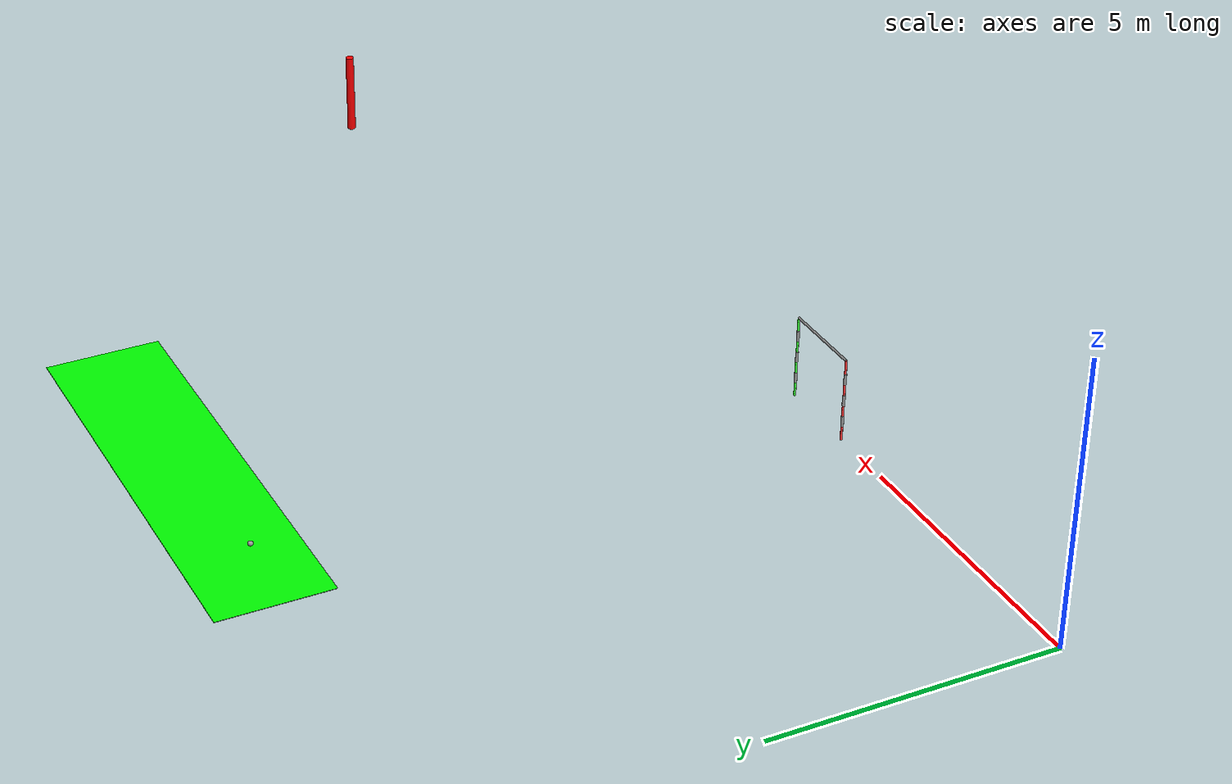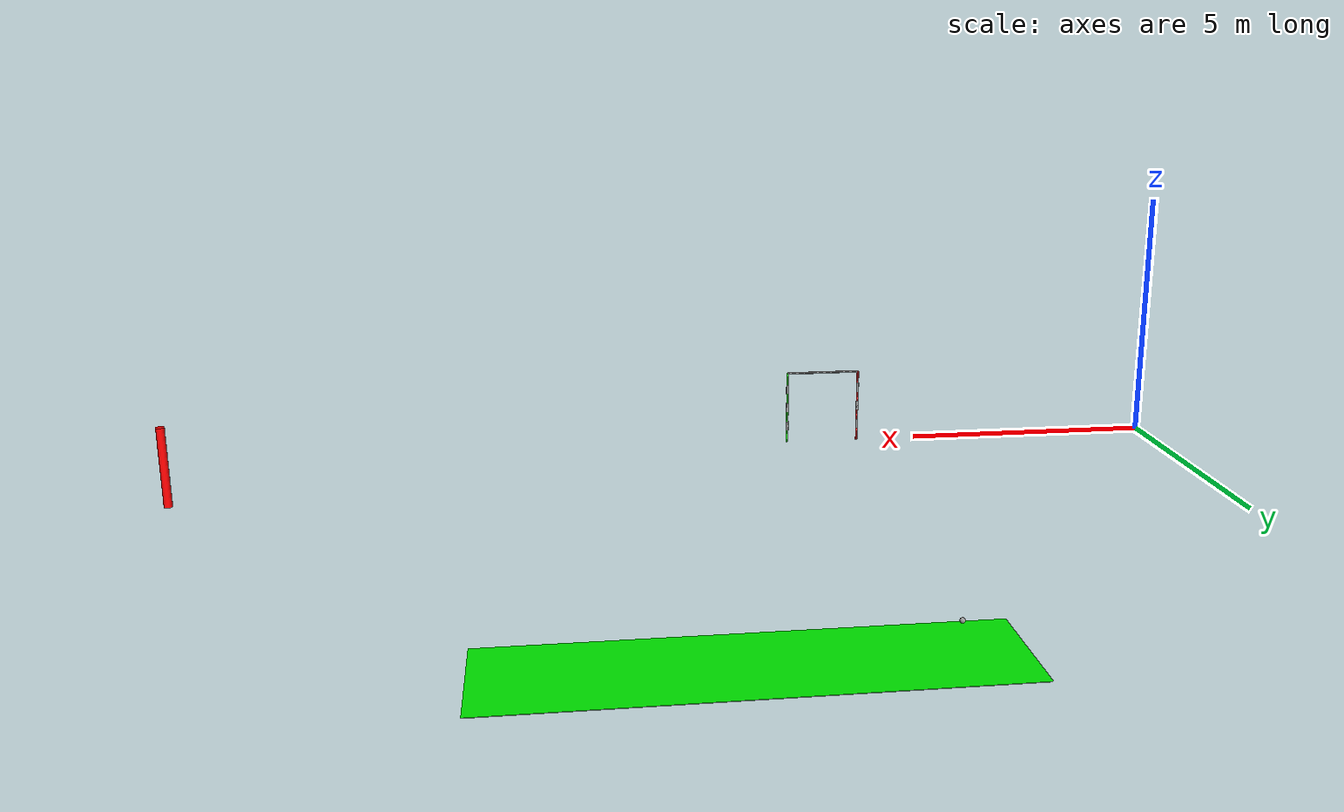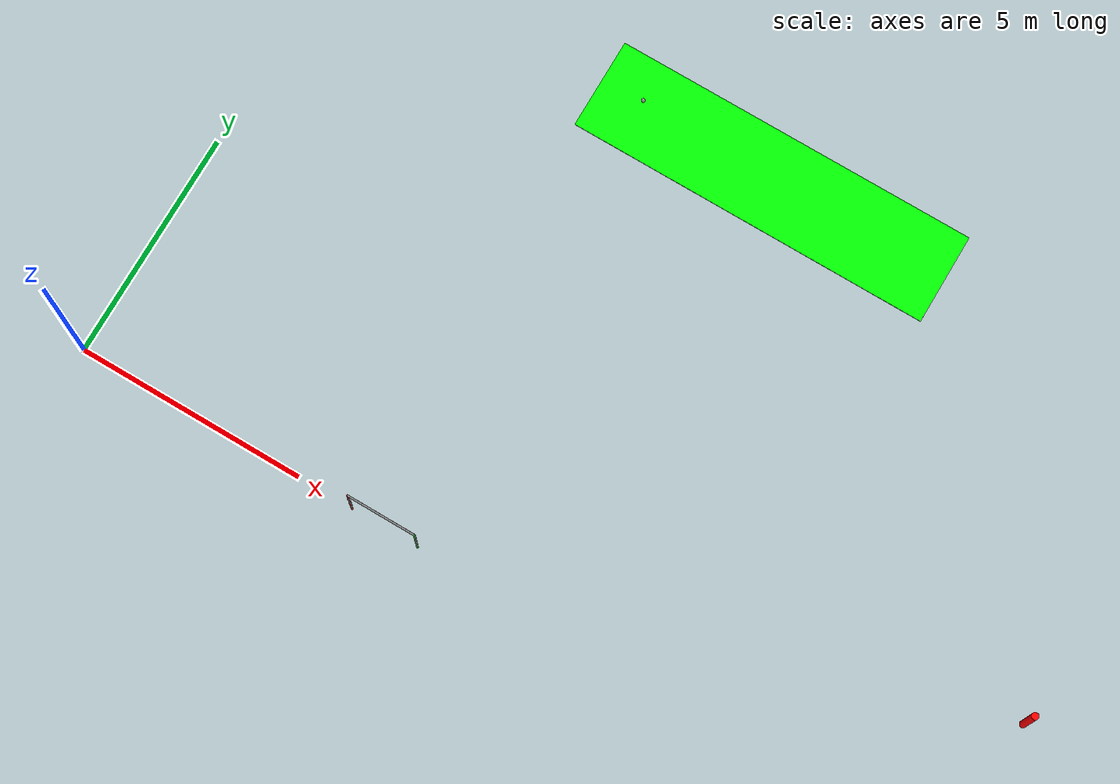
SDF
<sdf version="1.7">
 <world name="default">
  <include><uri>model://sun</uri></include>
  <include><uri>model://gate</uri><pose>7 0 0 0 -0 0</pose><static>1</static></include>
  <include><uri>model://green_mat</uri><pose>10 10 0 0 -0 0</pose><static>1</static></include>
  <include><uri>model://golf_ball</uri><pose>7 10 0.2 0 -0 0</pose></include>
  <include><uri>model://red_flare</uri><pose>19.6 3 0.2 0 -0 0</pose></include>
  <plugin name="gazebo_ros_state" filename="libgazebo_ros_state.so">
   <ros><namespace>/sauvc_sim</namespace></ros>
   <update_rate>1.0</update_rate>
  </plugin>
 </world>
</sdf>

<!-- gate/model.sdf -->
<sdf version='1.7'>
  <model name='gate'>
    <link name='link_0'>
      <inertial>
        <mass>1</mass>
        <inertia>
          <ixx>0.145833</ixx>
          <ixy>0</ixy>
          <ixz>0</ixz>
          <iyy>0.145833</iyy>
          <iyz>0</iyz>
          <izz>0.125</izz>
        </inertia>
        <pose>0 0 0 0 -0 0</pose>
      </inertial>
      <pose>-0.75 0 0.75 0 -0 0</pose>
      <gravity>1</gravity>
      <self_collide>0</self_collide>
      <kinematic>0</kinematic>
      <enable_wind>0</enable_wind>
      <visual name='ModelPreview_4::link_0::visual_3'>
        <pose>0 0 -0.4 0 -0 0</pose>
        <geometry>
          <cylinder>
            <radius>0.025</radius>
            <length>0.2</length>
          </cylinder>
        </geometry>
        <material>
          <lighting>1</lighting>
          <script>
            <uri>file://media/materials/scripts/gazebo.material</uri>
            <name>Gazebo/Grey</name>
          </script>
          <shader type='pixel'>
            <normal_map>__default__</normal_map>
          </shader>
          <ambient>0.3 0.3 0.3 1</ambient>
          <diffuse>0.2 0.2 0.2 1</diffuse>
          <specular>0.01 0.01 0.01 1</specular>
          <emissive>0 0 0 1</emissive>
        </material>
        <transparency>0</transparency>
        <cast_shadows>1</cast_shadows>
      </visual>
      <visual name='ModelPreview_1::link_0::visual_1'>
        <pose>0 0 0 0 -0 0</pose>
        <geometry>
          <cylinder>
            <radius>0.025</radius>
            <length>0.2</length>
          </cylinder>
        </geometry>
        <material>
          <lighting>1</lighting>
          <script>
            <uri>file://media/materials/scripts/gazebo.material</uri>
            <name>Gazebo/Grey</name>
          </script>
          <shader type='pixel'>
            <normal_map>__default__</normal_map>
          </shader>
          <ambient>0.3 0.3 0.3 1</ambient>
          <diffuse>0.2 0.2 0.2 1</diffuse>
          <specular>0.01 0.01 0.01 1</specular>
          <emissive>0 0 0 1</emissive>
        </material>
        <transparency>0</transparency>
        <cast_shadows>1</cast_shadows>
      </visual>
      <visual name='visual'>
        <pose>0 0 0 0 -0 0</pose>
        <geometry>
          <cylinder>
            <radius>0.02</radius>
            <length>1.5</length>
          </cylinder>
        </geometry>
        <material>
          <lighting>1</lighting>
          <script>
            <uri>file://media/materials/scripts/gazebo.material</uri>
            <name>Gazebo/Grey</name>
          </script>
          <shader type='pixel'>
            <normal_map>__default__</normal_map>
          </shader>
          <ambient>0.5 0.1 0.1 1</ambient>
          <diffuse>1 0.2 0.2 1</diffuse>
          <specular>0.01 0.01 0.01 1</specular>
          <emissive>0 0 0 1</emissive>
        </material>
        <transparency>0</transparency>
        <cast_shadows>1</cast_shadows>
      </visual>
      <visual name='ModelPreview_4::link_0::visual_2'>
        <pose>0 0 0.4 0 -0 0</pose>
        <geometry>
          <cylinder>
            <radius>0.025</radius>
            <length>0.2</length>
          </cylinder>
        </geometry>
        <material>
          <lighting>1</lighting>
          <script>
            <uri>file://media/materials/scripts/gazebo.material</uri>
            <name>Gazebo/Grey</name>
          </script>
          <shader type='pixel'>
            <normal_map>__default__</normal_map>
          </shader>
          <ambient>0.3 0.3 0.3 1</ambient>
          <diffuse>0.2 0.2 0.2 1</diffuse>
          <specular>0.01 0.01 0.01 1</specular>
          <emissive>0 0 0 1</emissive>
        </material>
        <transparency>0</transparency>
        <cast_shadows>1</cast_shadows>
      </visual>
      <collision name='collision'>
        <laser_retro>0</laser_retro>
        <max_contacts>10</max_contacts>
        <pose>0 0 0 0 -0 0</pose>
        <geometry>
          <cylinder>
            <radius>0.02</radius>
            <length>1.5</length>
          </cylinder>
        </geometry>
        <surface>
          <friction>
            <ode>
              <mu>1</mu>
              <mu2>1</mu2>
              <fdir1>0 0 0</fdir1>
              <slip1>0</slip1>
              <slip2>0</slip2>
            </ode>
            <torsional>
              <coefficient>1</coefficient>
              <patch_radius>0</patch_radius>
              <surface_radius>0</surface_radius>
              <use_patch_radius>1</use_patch_radius>
              <ode>
                <slip>0</slip>
              </ode>
            </torsional>
          </friction>
          <bounce>
            <restitution_coefficient>0</restitution_coefficient>
            <threshold>1e+06</threshold>
          </bounce>
          <contact>
            <collide_without_contact>0</collide_without_contact>
            <collide_without_contact_bitmask>1</collide_without_contact_bitmask>
            <collide_bitmask>1</collide_bitmask>
            <ode>
              <soft_cfm>0</soft_cfm>
              <soft_erp>0.2</soft_erp>
              <kp>1e+13</kp>
              <kd>1</kd>
              <max_vel>0.01</max_vel>
              <min_depth>0</min_depth>
            </ode>
            <bullet>
              <split_impulse>1</split_impulse>
              <split_impulse_penetration_threshold>-0.01</split_impulse_penetration_threshold>
              <soft_cfm>0</soft_cfm>
              <soft_erp>0.2</soft_erp>
              <kp>1e+13</kp>
              <kd>1</kd>
            </bullet>
          </contact>
        </surface>
      </collision>
    </link>
    <link name='link_0_clone'>
      <inertial>
        <mass>1</mass>
        <inertia>
          <ixx>0.145833</ixx>
          <ixy>0</ixy>
          <ixz>0</ixz>
          <iyy>0.145833</iyy>
          <iyz>0</iyz>
          <izz>0.125</izz>
        </inertia>
        <pose>0 0 0 0 -0 0</pose>
      </inertial>
      <pose>0.75 0 0.75 0 -0 0</pose>
      <gravity>1</gravity>
      <self_collide>0</self_collide>
      <kinematic>0</kinematic>
      <enable_wind>0</enable_wind>
      <visual name='ModelPreview_4::link_0_clone::visual_1'>
        <pose>0 0 0.4 0 -0 0</pose>
        <geometry>
          <cylinder>
            <radius>0.025</radius>
            <length>0.2</length>
          </cylinder>
        </geometry>
        <material>
          <lighting>1</lighting>
          <script>
            <uri>file://media/materials/scripts/gazebo.material</uri>
            <name>Gazebo/Grey</name>
          </script>
          <shader type='pixel'>
            <normal_map>__default__</normal_map>
          </shader>
          <ambient>0.3 0.3 0.3 1</ambient>
          <diffuse>0.2 0.2 0.2 1</diffuse>
          <specular>0.01 0.01 0.01 1</specular>
          <emissive>0 0 0 1</emissive>
        </material>
        <transparency>0</transparency>
        <cast_shadows>1</cast_shadows>
      </visual>
      <visual name='ModelPreview_4::link_0_clone::visual_3'>
        <pose>0 0 -0.4 0 -0 0</pose>
        <geometry>
          <cylinder>
            <radius>0.025</radius>
            <length>0.2</length>
          </cylinder>
        </geometry>
        <material>
          <lighting>1</lighting>
          <script>
            <uri>file://media/materials/scripts/gazebo.material</uri>
            <name>Gazebo/Grey</name>
          </script>
          <shader type='pixel'>
            <normal_map>__default__</normal_map>
          </shader>
          <ambient>0.3 0.3 0.3 1</ambient>
          <diffuse>0.2 0.2 0.2 1</diffuse>
          <specular>0.01 0.01 0.01 1</specular>
          <emissive>0 0 0 1</emissive>
        </material>
        <transparency>0</transparency>
        <cast_shadows>1</cast_shadows>
      </visual>
      <visual name='visual'>
        <pose>0 0 0 0 -0 0</pose>
        <geometry>
          <cylinder>
            <radius>0.02</radius>
            <length>1.5</length>
          </cylinder>
        </geometry>
        <material>
          <lighting>1</lighting>
          <script>
            <uri>file://media/materials/scripts/gazebo.material</uri>
            <name>Gazebo/Grey</name>
          </script>
          <shader type='pixel'>
            <normal_map>__default__</normal_map>
          </shader>
          <ambient>0.1 0.5 0.1 1</ambient>
          <diffuse>0.2 1 0.2 1</diffuse>
          <specular>0.01 0.01 0.01 1</specular>
          <emissive>0 0 0 1</emissive>
        </material>
        <transparency>0</transparency>
        <cast_shadows>1</cast_shadows>
      </visual>
      <visual name='ModelPreview_4::link_0_clone::visual_2'>
        <pose>0 0 0 0 -0 0</pose>
        <geometry>
          <cylinder>
            <radius>0.025</radius>
            <length>0.2</length>
          </cylinder>
        </geometry>
        <material>
          <lighting>1</lighting>
          <script>
            <uri>file://media/materials/scripts/gazebo.material</uri>
            <name>Gazebo/Grey</name>
          </script>
          <shader type='pixel'>
            <normal_map>__default__</normal_map>
          </shader>
          <ambient>0.3 0.3 0.3 1</ambient>
          <diffuse>0.2 0.2 0.2 1</diffuse>
          <specular>0.01 0.01 0.01 1</specular>
          <emissive>0 0 0 1</emissive>
        </material>
        <transparency>0</transparency>
        <cast_shadows>1</cast_shadows>
      </visual>
      <collision name='collision'>
        <laser_retro>0</laser_retro>
        <max_contacts>10</max_contacts>
        <pose>0 0 0 0 -0 0</pose>
        <geometry>
          <cylinder>
            <radius>0.02</radius>
            <length>1.5</length>
          </cylinder>
        </geometry>
        <surface>
          <friction>
            <ode>
              <mu>1</mu>
              <mu2>1</mu2>
              <fdir1>0 0 0</fdir1>
              <slip1>0</slip1>
              <slip2>0</slip2>
            </ode>
            <torsional>
              <coefficient>1</coefficient>
              <patch_radius>0</patch_radius>
              <surface_radius>0</surface_radius>
              <use_patch_radius>1</use_patch_radius>
              <ode>
                <slip>0</slip>
              </ode>
            </torsional>
          </friction>
          <bounce>
            <restitution_coefficient>0</restitution_coefficient>
            <threshold>1e+06</threshold>
          </bounce>
          <contact>
            <collide_without_contact>0</collide_without_contact>
            <collide_without_contact_bitmask>1</collide_without_contact_bitmask>
            <collide_bitmask>1</collide_bitmask>
            <ode>
              <soft_cfm>0</soft_cfm>
              <soft_erp>0.2</soft_erp>
              <kp>1e+13</kp>
              <kd>1</kd>
              <max_vel>0.01</max_vel>
              <min_depth>0</min_depth>
            </ode>
            <bullet>
              <split_impulse>1</split_impulse>
              <split_impulse_penetration_threshold>-0.01</split_impulse_penetration_threshold>
              <soft_cfm>0</soft_cfm>
              <soft_erp>0.2</soft_erp>
              <kp>1e+13</kp>
              <kd>1</kd>
            </bullet>
          </contact>
        </surface>
      </collision>
    </link>
    <link name='link_0_clone_0'>
      <inertial>
        <mass>1</mass>
        <inertia>
          <ixx>0.145833</ixx>
          <ixy>0</ixy>
          <ixz>0</ixz>
          <iyy>0.145833</iyy>
          <iyz>0</iyz>
          <izz>0.125</izz>
        </inertia>
        <pose>0 0 0 0 -0 0</pose>
      </inertial>
      <pose>0 0 1.5 3.14159 -1.57079 3.14159</pose>
      <gravity>1</gravity>
      <self_collide>0</self_collide>
      <kinematic>0</kinematic>
      <enable_wind>0</enable_wind>
      <visual name='visual'>
        <pose>0 0 0 0 -0 0</pose>
        <geometry>
          <cylinder>
            <radius>0.02</radius>
            <length>1.5</length>
          </cylinder>
        </geometry>
        <material>
          <lighting>1</lighting>
          <script>
            <uri>file://media/materials/scripts/gazebo.material</uri>
            <name>Gazebo/Grey</name>
          </script>
          <shader type='pixel'>
            <normal_map>__default__</normal_map>
          </shader>
          <ambient>0.3 0.3 0.3 1</ambient>
          <diffuse>0.2 0.2 0.2 1</diffuse>
          <specular>0.01 0.01 0.01 1</specular>
          <emissive>0 0 0 1</emissive>
        </material>
        <transparency>0</transparency>
        <cast_shadows>1</cast_shadows>
      </visual>
      <collision name='collision'>
        <laser_retro>0</laser_retro>
        <max_contacts>10</max_contacts>
        <pose>0 0 0 0 -0 0</pose>
        <geometry>
          <cylinder>
            <radius>0.02</radius>
            <length>1.5</length>
          </cylinder>
        </geometry>
        <surface>
          <friction>
            <ode>
              <mu>1</mu>
              <mu2>1</mu2>
              <fdir1>0 0 0</fdir1>
              <slip1>0</slip1>
              <slip2>0</slip2>
            </ode>
            <torsional>
              <coefficient>1</coefficient>
              <patch_radius>0</patch_radius>
              <surface_radius>0</surface_radius>
              <use_patch_radius>1</use_patch_radius>
              <ode>
                <slip>0</slip>
              </ode>
            </torsional>
          </friction>
          <bounce>
            <restitution_coefficient>0</restitution_coefficient>
            <threshold>1e+06</threshold>
          </bounce>
          <contact>
            <collide_without_contact>0</collide_without_contact>
            <collide_without_contact_bitmask>1</collide_without_contact_bitmask>
            <collide_bitmask>1</collide_bitmask>
            <ode>
              <soft_cfm>0</soft_cfm>
              <soft_erp>0.2</soft_erp>
              <kp>1e+13</kp>
              <kd>1</kd>
              <max_vel>0.01</max_vel>
              <min_depth>0</min_depth>
            </ode>
            <bullet>
              <split_impulse>1</split_impulse>
              <split_impulse_penetration_threshold>-0.01</split_impulse_penetration_threshold>
              <soft_cfm>0</soft_cfm>
              <soft_erp>0.2</soft_erp>
              <kp>1e+13</kp>
              <kd>1</kd>
            </bullet>
          </contact>
        </surface>
      </collision>
    </link>
    <joint name='link_0_clone_0_JOINT_0' type='fixed'>
      <parent>link_0_clone_0</parent>
      <child>link_0</child>
      <pose>0 0 0 0 -0 0</pose>
      <physics>
        <ode>
          <limit>
            <cfm>0</cfm>
            <erp>0.2</erp>
          </limit>
          <suspension>
            <cfm>0</cfm>
            <erp>0.2</erp>
          </suspension>
        </ode>
      </physics>
    </joint>
    <joint name='link_0_clone_0_JOINT_1' type='fixed'>
      <parent>link_0_clone_0</parent>
      <child>link_0_clone</child>
      <pose>0 0 0 0 -0 0</pose>
      <physics>
        <ode>
          <limit>
            <cfm>0</cfm>
            <erp>0.2</erp>
          </limit>
          <suspension>
            <cfm>0</cfm>
            <erp>0.2</erp>
          </suspension>
        </ode>
      </physics>
    </joint>
    <static>1</static>
    <allow_auto_disable>1</allow_auto_disable>
  </model>
</sdf>

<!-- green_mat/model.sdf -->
<sdf version='1.7'>
  <model name='green_mat'>
    <link name='link_1'>
      <inertial>
        <mass>1</mass>
        <inertia>
          <ixx>0.166667</ixx>
          <ixy>0</ixy>
          <ixz>0</ixz>
          <iyy>0.166667</iyy>
          <iyz>0</iyz>
          <izz>0.166667</izz>
        </inertia>
        <pose>0 0 0 0 -0 0</pose>
      </inertial>
      <pose>0 0 -0 0 -0 0</pose>
      <gravity>1</gravity>
      <self_collide>0</self_collide>
      <kinematic>0</kinematic>
      <enable_wind>0</enable_wind>
      <visual name='visual'>
        <pose>0 0 0 0 -0 0</pose>
        <geometry>
          <box>
            <size>8 2 0.01</size>
          </box>
        </geometry>
        <material>
          <lighting>1</lighting>
          <script>
            <uri>file://media/materials/scripts/gazebo.material</uri>
            <name>Gazebo/Grey</name>
          </script>
          <shader type='pixel'>
            <normal_map>__default__</normal_map>
          </shader>
          <ambient>0 1 0 1</ambient>
          <diffuse>0 1 0 1</diffuse>
          <specular>0.01 0.01 0.01 1</specular>
          <emissive>0 0 0 1</emissive>
        </material>
        <transparency>0</transparency>
        <cast_shadows>1</cast_shadows>
      </visual>
      <collision name='collision'>
        <laser_retro>0</laser_retro>
        <max_contacts>10</max_contacts>
        <pose>0 0 0 0 -0 0</pose>
        <geometry>
          <box>
            <size>8 2 0.01</size>
          </box>
        </geometry>
        <surface>
          <friction>
            <ode>
              <mu>1</mu>
              <mu2>1</mu2>
              <fdir1>0 0 0</fdir1>
              <slip1>0</slip1>
              <slip2>0</slip2>
            </ode>
            <torsional>
              <coefficient>1</coefficient>
              <patch_radius>0</patch_radius>
              <surface_radius>0</surface_radius>
              <use_patch_radius>1</use_patch_radius>
              <ode>
                <slip>0</slip>
              </ode>
            </torsional>
          </friction>
          <bounce>
            <restitution_coefficient>0</restitution_coefficient>
            <threshold>1e+06</threshold>
          </bounce>
          <contact>
            <collide_without_contact>0</collide_without_contact>
            <collide_without_contact_bitmask>1</collide_without_contact_bitmask>
            <collide_bitmask>1</collide_bitmask>
            <ode>
              <soft_cfm>0</soft_cfm>
              <soft_erp>0.2</soft_erp>
              <kp>1e+13</kp>
              <kd>1</kd>
              <max_vel>0.01</max_vel>
              <min_depth>0</min_depth>
            </ode>
            <bullet>
              <split_impulse>1</split_impulse>
              <split_impulse_penetration_threshold>-0.01</split_impulse_penetration_threshold>
              <soft_cfm>0</soft_cfm>
              <soft_erp>0.2</soft_erp>
              <kp>1e+13</kp>
              <kd>1</kd>
            </bullet>
          </contact>
        </surface>
      </collision>
    </link>
    <static>0</static>
    <allow_auto_disable>1</allow_auto_disable>
  </model>
</sdf>

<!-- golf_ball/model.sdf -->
<sdf version='1.7'>
  <model name='golf_ball'>
    <link name='link_0'>
      <inertial>
        <mass>1</mass>
        <inertia>
          <ixx>0.1</ixx>
          <ixy>0</ixy>
          <ixz>0</ixz>
          <iyy>0.1</iyy>
          <iyz>0</iyz>
          <izz>0.1</izz>
        </inertia>
        <pose>0 0 0 0 -0 0</pose>
      </inertial>
      <pose>0 0 0.3 0 -0 0</pose>
      <gravity>1</gravity>
      <self_collide>0</self_collide>
      <kinematic>0</kinematic>
      <enable_wind>0</enable_wind>
      <visual name='visual'>
        <pose>0 0 0 0 -0 0</pose>
        <geometry>
          <sphere>
            <radius>0.0427</radius>
          </sphere>
        </geometry>
        <material>
          <lighting>1</lighting>
          <script>
            <uri>file://media/materials/scripts/gazebo.material</uri>
            <name>Gazebo/Grey</name>
          </script>
          <shader type='pixel'>
            <normal_map>__default__</normal_map>
          </shader>
          <ambient>1 1 1 1</ambient>
          <diffuse>1 1 1 1</diffuse>
          <specular>1 1 1 1</specular>
          <emissive>0 0 0 1</emissive>
        </material>
        <transparency>0</transparency>
        <cast_shadows>1</cast_shadows>
      </visual>
      <collision name='collision'>
        <laser_retro>0</laser_retro>
        <max_contacts>10</max_contacts>
        <pose>0 0 0 0 -0 0</pose>
        <geometry>
          <sphere>
            <radius>0.0427</radius>
          </sphere>
        </geometry>
        <surface>
          <friction>
            <ode>
              <mu>1</mu>
              <mu2>1</mu2>
              <fdir1>0 0 0</fdir1>
              <slip1>0</slip1>
              <slip2>0</slip2>
            </ode>
            <torsional>
              <coefficient>1</coefficient>
              <patch_radius>0</patch_radius>
              <surface_radius>0</surface_radius>
              <use_patch_radius>1</use_patch_radius>
              <ode>
                <slip>0</slip>
              </ode>
            </torsional>
          </friction>
          <bounce>
            <restitution_coefficient>0</restitution_coefficient>
            <threshold>1e+06</threshold>
          </bounce>
          <contact>
            <collide_without_contact>0</collide_without_contact>
            <collide_without_contact_bitmask>1</collide_without_contact_bitmask>
            <collide_bitmask>1</collide_bitmask>
            <ode>
              <soft_cfm>0</soft_cfm>
              <soft_erp>0.2</soft_erp>
              <kp>1e+13</kp>
              <kd>1</kd>
              <max_vel>0.01</max_vel>
              <min_depth>0</min_depth>
            </ode>
            <bullet>
              <split_impulse>1</split_impulse>
              <split_impulse_penetration_threshold>-0.01</split_impulse_penetration_threshold>
              <soft_cfm>0</soft_cfm>
              <soft_erp>0.2</soft_erp>
              <kp>1e+13</kp>
              <kd>1</kd>
            </bullet>
          </contact>
        </surface>
      </collision>
    </link>
    <static>0</static>
    <allow_auto_disable>1</allow_auto_disable>
  </model>
</sdf>

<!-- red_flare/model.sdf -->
<sdf version='1.7'>
  <model name='red_flare'>
    <link name='link_1'>
      <inertial>
        <mass>0.0123911</mass>
        <inertia>
          <ixx>0.00104219</ixx>
          <ixy>0</ixy>
          <ixz>0</ixz>
          <iyy>0.00104219</iyy>
          <iyz>0</iyz>
          <izz>1.919e-05</izz>
        </inertia>
        <pose>0 0 0 0 -0 0</pose>
      </inertial>
      <pose>-0 0 0.75 0 -0 0</pose>
      <gravity>1</gravity>
      <self_collide>0</self_collide>
      <kinematic>0</kinematic>
      <enable_wind>0</enable_wind>
      <visual name='visual'>
        <pose>0 0 0 0 -0 0</pose>
        <geometry>
          <cylinder>
            <radius>0.075</radius>
            <length>1.5</length>
          </cylinder>
        </geometry>
        <material>
          <lighting>1</lighting>
          <script>
            <uri>file://media/materials/scripts/gazebo.material</uri>
            <name>Gazebo/Grey</name>
          </script>
          <shader type='pixel'>
            <normal_map>__default__</normal_map>
          </shader>
          <ambient>1 0 0 1</ambient>
          <diffuse>1 0 0 1</diffuse>
          <specular>0.01 0 0 1</specular>
          <emissive>0 0 0 1</emissive>
        </material>
        <transparency>0</transparency>
        <cast_shadows>1</cast_shadows>
      </visual>
      <collision name='collision'>
        <laser_retro>0</laser_retro>
        <max_contacts>10</max_contacts>
        <pose>0 0 0 0 -0 0</pose>
        <geometry>
          <cylinder>
            <radius>0.075</radius>
            <length>1.5</length>
          </cylinder>
        </geometry>
        <surface>
          <friction>
            <ode>
              <mu>1</mu>
              <mu2>1</mu2>
              <fdir1>0 0 0</fdir1>
              <slip1>0</slip1>
              <slip2>0</slip2>
            </ode>
            <torsional>
              <coefficient>1</coefficient>
              <patch_radius>0</patch_radius>
              <surface_radius>0</surface_radius>
              <use_patch_radius>1</use_patch_radius>
              <ode>
                <slip>0</slip>
              </ode>
            </torsional>
          </friction>
          <bounce>
            <restitution_coefficient>0</restitution_coefficient>
            <threshold>1e+06</threshold>
          </bounce>
          <contact>
            <collide_without_contact>0</collide_without_contact>
            <collide_without_contact_bitmask>1</collide_without_contact_bitmask>
            <collide_bitmask>1</collide_bitmask>
            <ode>
              <soft_cfm>0</soft_cfm>
              <soft_erp>0.2</soft_erp>
              <kp>1e+13</kp>
              <kd>1</kd>
              <max_vel>0.01</max_vel>
              <min_depth>0</min_depth>
            </ode>
            <bullet>
              <split_impulse>1</split_impulse>
              <split_impulse_penetration_threshold>-0.01</split_impulse_penetration_threshold>
              <soft_cfm>0</soft_cfm>
              <soft_erp>0.2</soft_erp>
              <kp>1e+13</kp>
              <kd>1</kd>
            </bullet>
          </contact>
        </surface>
      </collision>
    </link>
    <static>0</static>
    <allow_auto_disable>1</allow_auto_disable>
  </model>
</sdf>
